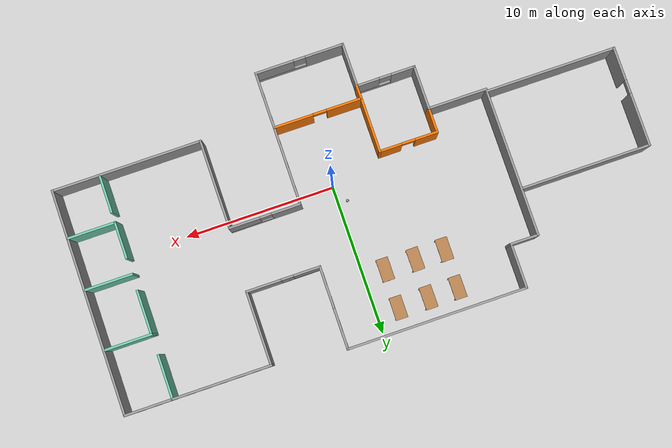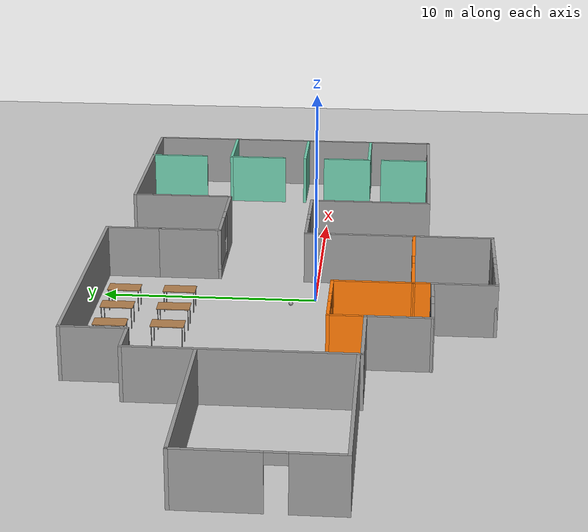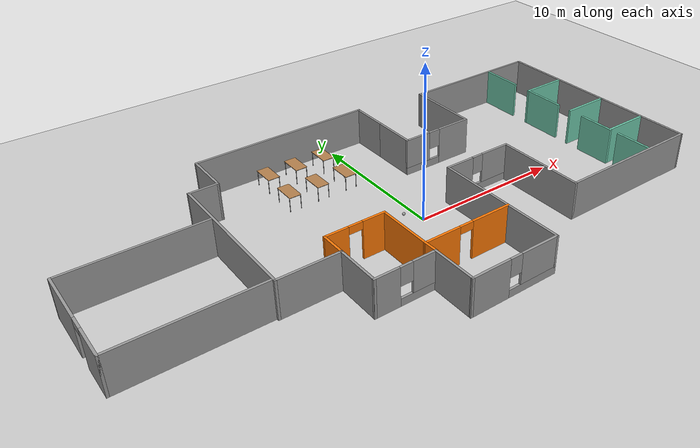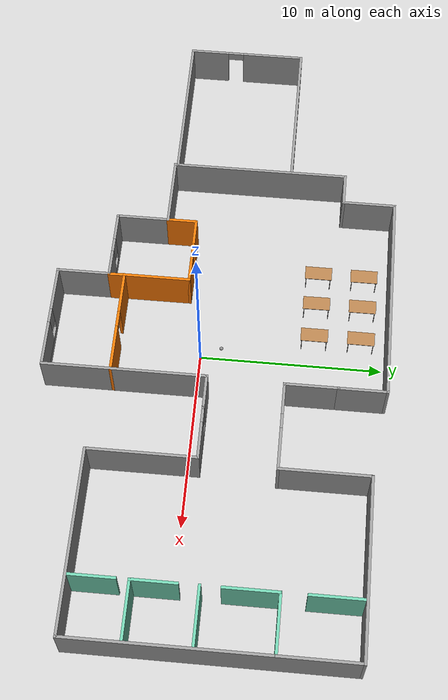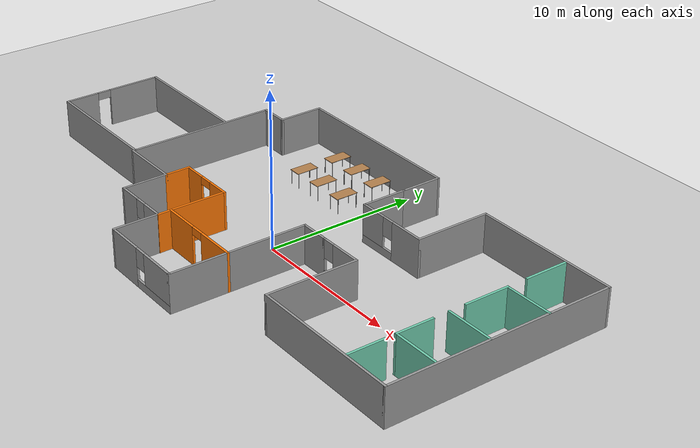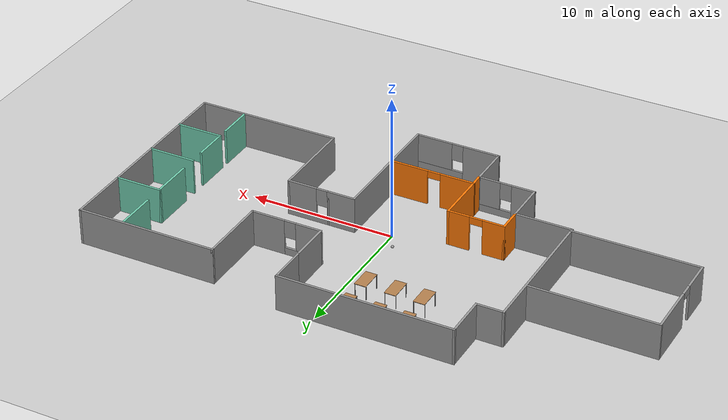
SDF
<sdf version="1.6">
 <world name="default">
  <model name="ground_plane">
   <static>1</static>
   <link name="link">
    <collision name="collision">
     <geometry><plane><normal>0 0 1</normal><size>100 100</size></plane></geometry>
     <surface>
      <contact><collide_bitmask>65535</collide_bitmask></contact>
      <friction><ode><mu>100</mu><mu2>50</mu2></ode></friction>
     </surface>
    </collision>
    <visual name="visual">
     <cast_shadows>0</cast_shadows>
     <geometry><plane><normal>0 0 1</normal><size>100 100</size></plane></geometry>
     <material>
      <script><uri>file://media/materials/scripts/gazebo.material</uri><name>Gazebo/Grey</name></script>
     </material>
    </visual>
   </link>
  </model>
  <model name="Project1_building">
   <pose>-1.45502 0.99671 0 0 -0 0</pose>
   <link name="Wall_35">
    <collision name="Wall_35_Collision">
     <geometry><box><size>10.0004 0.15 2.5</size></box></geometry>
     <pose>0 0 1.25 0 -0 0</pose>
    </collision>
    <visual name="Wall_35_Visual">
     <pose>0 0 1.25 0 -0 0</pose>
     <geometry><box><size>10.0004 0.15 2.5</size></box></geometry>
     <material>
      <script><uri>file://media/materials/scripts/gazebo.material</uri><name>Gazebo/Grey</name></script>
      <ambient>1 1 1 1</ambient>
     </material>
     <meta><layer>0</layer></meta>
    </visual>
    <pose>-9.74538 1.39985 0 0 0 -1.57079</pose>
   </link>
   <link name="Wall_36">
    <collision name="Wall_36_Collision">
     <geometry><box><size>4 0.15 2.5</size></box></geometry>
     <pose>0 0 1.25 0 -0 0</pose>
    </collision>
    <visual name="Wall_36_Visual">
     <pose>0 0 1.25 0 -0 0</pose>
     <geometry><box><size>4 0.15 2.5</size></box></geometry>
     <material>
      <script><uri>file://media/materials/scripts/gazebo.material</uri><name>Gazebo/Grey</name></script>
      <ambient>1 1 1 1</ambient>
     </material>
     <meta><layer>0</layer></meta>
    </visual>
    <pose>-7.82036 -3.52533 0 0 -0 0</pose>
   </link>
   <link name="Wall_37">
    <collision name="Wall_37_Collision">
     <geometry><box><size>3 0.15 2.5</size></box></geometry>
     <pose>0 0 1.25 0 -0 0</pose>
    </collision>
    <visual name="Wall_37_Visual">
     <pose>0 0 1.25 0 -0 0</pose>
     <geometry><box><size>3 0.15 2.5</size></box></geometry>
     <material>
      <script><uri>file://media/materials/scripts/gazebo.material</uri><name>Gazebo/Grey</name></script>
      <ambient>1 1 1 1</ambient>
     </material>
     <meta><layer>0</layer></meta>
    </visual>
    <pose>-5.89538 -4.95015 0 0 0 -1.57081</pose>
   </link>
   <link name="Wall_38">
    <pose>-3.97038 -6.37481 0 0 -0 8.5e-05</pose>
    <visual name="Wall_38_Visual_0">
     <pose>-1.18388 0 1.25 0 -0 0</pose>
     <geometry><box><size>1.63229 0.15 2.5</size></box></geometry>
     <material>
      <script><uri>file://media/materials/scripts/gazebo.material</uri><name>Gazebo/Grey</name></script>
      <ambient>1 1 1 1</ambient>
     </material>
     <meta><layer>0</layer></meta>
    </visual>
    <collision name="Wall_38_Collision_0">
     <geometry><box><size>1.63229 0.15 2.5</size></box></geometry>
     <pose>-1.18388 0 1.25 0 -0 0</pose>
    </collision>
    <visual name="Wall_38_Visual_1">
     <pose>0.816147 0 0.25 0 -0 0</pose>
     <geometry><box><size>2.36775 0.15 0.5</size></box></geometry>
     <material>
      <script><uri>file://media/materials/scripts/gazebo.material</uri><name>Gazebo/Grey</name></script>
      <ambient>1 1 1 1</ambient>
     </material>
     <meta><layer>0</layer></meta>
    </visual>
    <collision name="Wall_38_Collision_1">
     <geometry><box><size>2.36775 0.15 0.5</size></box></geometry>
     <pose>0.816147 0 0.25 0 -0 0</pose>
    </collision>
    <visual name="Wall_38_Visual_2">
     <pose>1.21615 0 1.5 0 -0 0</pose>
     <geometry><box><size>1.56775 0.15 2</size></box></geometry>
     <material>
      <script><uri>file://media/materials/scripts/gazebo.material</uri><name>Gazebo/Grey</name></script>
      <ambient>1 1 1 1</ambient>
     </material>
     <meta><layer>0</layer></meta>
    </visual>
    <collision name="Wall_38_Collision_2">
     <geometry><box><size>1.56775 0.15 2</size></box></geometry>
     <pose>1.21615 0 1.5 0 -0 0</pose>
    </collision>
    <visual name="Wall_38_Visual_3">
     <pose>0.032272 0 1.9 0 -0 0</pose>
     <geometry><box><size>0.8 0.15 1.2</size></box></geometry>
     <material>
      <script><uri>file://media/materials/scripts/gazebo.material</uri><name>Gazebo/Grey</name></script>
      <ambient>1 1 1 1</ambient>
     </material>
     <meta><layer>0</layer></meta>
    </visual>
    <collision name="Wall_38_Collision_3">
     <geometry><box><size>0.8 0.15 1.2</size></box></geometry>
     <pose>0.032272 0 1.9 0 -0 0</pose>
    </collision>
   </link>
   <link name="Wall_39">
    <collision name="Wall_39_Collision">
     <geometry><box><size>3.00042 0.15 2.5</size></box></geometry>
     <pose>0 0 1.25 0 -0 0</pose>
    </collision>
    <visual name="Wall_39_Visual">
     <pose>0 0 1.25 0 -0 0</pose>
     <geometry><box><size>3.00042 0.15 2.5</size></box></geometry>
     <material>
      <script><uri>file://media/materials/scripts/gazebo.material</uri><name>Gazebo/Grey</name></script>
      <ambient>1 1 1 1</ambient>
     </material>
     <meta><layer>0</layer></meta>
    </visual>
    <pose>-2.04538 -7.79981 0 0 0 -1.57081</pose>
   </link>
   <link name="Wall_40">
    <pose>0.879597 -9.22498 0 0 -0 0</pose>
    <visual name="Wall_40_Visual_0">
     <pose>-1.7008 0 1.25 0 -0 0</pose>
     <geometry><box><size>2.59839 0.15 2.5</size></box></geometry>
     <material>
      <script><uri>file://media/materials/scripts/gazebo.material</uri><name>Gazebo/Grey</name></script>
      <ambient>1 1 1 1</ambient>
     </material>
     <meta><layer>0</layer></meta>
    </visual>
    <collision name="Wall_40_Collision_0">
     <geometry><box><size>2.59839 0.15 2.5</size></box></geometry>
     <pose>-1.7008 0 1.25 0 -0 0</pose>
    </collision>
    <visual name="Wall_40_Visual_1">
     <pose>1.2992 0 0.25 0 -0 0</pose>
     <geometry><box><size>3.40161 0.15 0.5</size></box></geometry>
     <material>
      <script><uri>file://media/materials/scripts/gazebo.material</uri><name>Gazebo/Grey</name></script>
      <ambient>1 1 1 1</ambient>
     </material>
     <meta><layer>0</layer></meta>
    </visual>
    <collision name="Wall_40_Collision_1">
     <geometry><box><size>3.40161 0.15 0.5</size></box></geometry>
     <pose>1.2992 0 0.25 0 -0 0</pose>
    </collision>
    <visual name="Wall_40_Visual_2">
     <pose>1.6992 0 1.5 0 -0 0</pose>
     <geometry><box><size>2.60161 0.15 2</size></box></geometry>
     <material>
      <script><uri>file://media/materials/scripts/gazebo.material</uri><name>Gazebo/Grey</name></script>
      <ambient>1 1 1 1</ambient>
     </material>
     <meta><layer>0</layer></meta>
    </visual>
    <collision name="Wall_40_Collision_2">
     <geometry><box><size>2.60161 0.15 2</size></box></geometry>
     <pose>1.6992 0 1.5 0 -0 0</pose>
    </collision>
    <visual name="Wall_40_Visual_3">
     <pose>-0.001609 0 1.9 0 -0 0</pose>
     <geometry><box><size>0.8 0.15 1.2</size></box></geometry>
     <material>
      <script><uri>file://media/materials/scripts/gazebo.material</uri><name>Gazebo/Grey</name></script>
      <ambient>1 1 1 1</ambient>
     </material>
     <meta><layer>0</layer></meta>
    </visual>
    <collision name="Wall_40_Collision_3">
     <geometry><box><size>0.8 0.15 1.2</size></box></geometry>
     <pose>-0.001609 0 1.9 0 -0 0</pose>
    </collision>
   </link>
   <link name="Wall_41">
    <collision name="Wall_41_Collision">
     <geometry><box><size>9 0.15 2.5</size></box></geometry>
     <pose>0 0 1.25 0 -0 0</pose>
    </collision>
    <visual name="Wall_41_Visual">
     <pose>0 0 1.25 0 -0 0</pose>
     <geometry><box><size>9 0.15 2.5</size></box></geometry>
     <material>
      <script><uri>file://media/materials/scripts/gazebo.material</uri><name>Gazebo/Grey</name></script>
      <ambient>1 1 1 1</ambient>
     </material>
     <meta><layer>0</layer></meta>
    </visual>
    <pose>3.8046 -4.79998 0 0 -0 1.5708</pose>
   </link>
   <link name="Wall_42">
    <collision name="Wall_42_Collision">
     <geometry><box><size>2 0.15 2.5</size></box></geometry>
     <pose>0 0 1.25 0 -0 0</pose>
    </collision>
    <visual name="Wall_42_Visual">
     <pose>0 0 1.25 0 -0 0</pose>
     <geometry><box><size>2 0.15 2.5</size></box></geometry>
     <material>
      <script><uri>file://media/materials/scripts/gazebo.material</uri><name>Gazebo/Grey</name></script>
      <ambient>1 1 1 1</ambient>
     </material>
     <meta><layer>0</layer></meta>
    </visual>
    <pose>4.7296 -0.374976 0 0 -0 0</pose>
   </link>
   <link name="Wall_43">
    <pose>7.0796 -0.374976 0 0 -0 0</pose>
    <visual name="Wall_43_Visual_0">
     <pose>-1.44424 0 1.25 0 -0 0</pose>
     <geometry><box><size>0.111524 0.15 2.5</size></box></geometry>
     <material>
      <script><uri>file://media/materials/scripts/gazebo.material</uri><name>Gazebo/Grey</name></script>
      <ambient>1 1 1 1</ambient>
     </material>
     <meta><layer>0</layer></meta>
    </visual>
    <collision name="Wall_43_Collision_0">
     <geometry><box><size>0.111524 0.15 2.5</size></box></geometry>
     <pose>-1.44424 0 1.25 0 -0 0</pose>
    </collision>
    <visual name="Wall_43_Visual_1">
     <pose>0.055762 0 0.25 0 -0 0</pose>
     <geometry><box><size>2.88848 0.15 0.5</size></box></geometry>
     <material>
      <script><uri>file://media/materials/scripts/gazebo.material</uri><name>Gazebo/Grey</name></script>
      <ambient>1 1 1 1</ambient>
     </material>
     <meta><layer>0</layer></meta>
    </visual>
    <collision name="Wall_43_Collision_1">
     <geometry><box><size>2.88848 0.15 0.5</size></box></geometry>
     <pose>0.055762 0 0.25 0 -0 0</pose>
    </collision>
    <visual name="Wall_43_Visual_2">
     <pose>0.455762 0 1.5 0 -0 0</pose>
     <geometry><box><size>2.08848 0.15 2</size></box></geometry>
     <material>
      <script><uri>file://media/materials/scripts/gazebo.material</uri><name>Gazebo/Grey</name></script>
      <ambient>1 1 1 1</ambient>
     </material>
     <meta><layer>0</layer></meta>
    </visual>
    <collision name="Wall_43_Collision_2">
     <geometry><box><size>2.08848 0.15 2</size></box></geometry>
     <pose>0.455762 0 1.5 0 -0 0</pose>
    </collision>
    <visual name="Wall_43_Visual_3">
     <pose>-0.988476 0 1.9 0 -0 0</pose>
     <geometry><box><size>0.8 0.15 1.2</size></box></geometry>
     <material>
      <script><uri>file://media/materials/scripts/gazebo.material</uri><name>Gazebo/Grey</name></script>
      <ambient>1 1 1 1</ambient>
     </material>
     <meta><layer>0</layer></meta>
    </visual>
    <collision name="Wall_43_Collision_3">
     <geometry><box><size>0.8 0.15 1.2</size></box></geometry>
     <pose>-0.988476 0 1.9 0 -0 0</pose>
    </collision>
   </link>
   <link name="Wall_44">
    <collision name="Wall_44_Collision">
     <geometry><box><size>6 0.15 2.5</size></box></geometry>
     <pose>0 0 1.25 0 -0 0</pose>
    </collision>
    <visual name="Wall_44_Visual">
     <pose>0 0 1.25 0 -0 0</pose>
     <geometry><box><size>6 0.15 2.5</size></box></geometry>
     <material>
      <script><uri>file://media/materials/scripts/gazebo.material</uri><name>Gazebo/Grey</name></script>
      <ambient>1 1 1 1</ambient>
     </material>
     <meta><layer>0</layer></meta>
    </visual>
    <pose>8.5046 -3.29998 0 0 0 -1.5708</pose>
   </link>
   <link name="Wall_45">
    <collision name="Wall_45_Collision">
     <geometry><box><size>10 0.15 2.5</size></box></geometry>
     <pose>0 0 1.25 0 -0 0</pose>
    </collision>
    <visual name="Wall_45_Visual">
     <pose>0 0 1.25 0 -0 0</pose>
     <geometry><box><size>10 0.15 2.5</size></box></geometry>
     <material>
      <script><uri>file://media/materials/scripts/gazebo.material</uri><name>Gazebo/Grey</name></script>
      <ambient>1 1 1 1</ambient>
     </material>
     <meta><layer>0</layer></meta>
    </visual>
    <pose>13.4296 -6.22498 0 0 -0 0</pose>
   </link>
   <link name="Wall_46">
    <collision name="Wall_46_Collision">
     <geometry><box><size>15 0.15 2.5</size></box></geometry>
     <pose>0 0 1.25 0 -0 0</pose>
    </collision>
    <visual name="Wall_46_Visual">
     <pose>0 0 1.25 0 -0 0</pose>
     <geometry><box><size>15 0.15 2.5</size></box></geometry>
     <material>
      <script><uri>file://media/materials/scripts/gazebo.material</uri><name>Gazebo/Grey</name></script>
      <ambient>1 1 1 1</ambient>
     </material>
     <meta><layer>0</layer></meta>
    </visual>
    <pose>18.3546 1.20002 0 0 -0 1.5708</pose>
   </link>
   <link name="Wall_47">
    <collision name="Wall_47_Collision">
     <geometry><box><size>9.75 0.15 2.5</size></box></geometry>
     <pose>0 0 1.25 0 -0 0</pose>
    </collision>
    <visual name="Wall_47_Visual">
     <pose>0 0 1.25 0 -0 0</pose>
     <geometry><box><size>9.75 0.15 2.5</size></box></geometry>
     <material>
      <script><uri>file://media/materials/scripts/gazebo.material</uri><name>Gazebo/Grey</name></script>
      <ambient>1 1 1 1</ambient>
     </material>
     <meta><layer>0</layer></meta>
    </visual>
    <pose>13.5546 8.62502 0 0 -0 3.14159</pose>
   </link>
   <link name="Wall_48">
    <collision name="Wall_48_Collision">
     <geometry><box><size>5 0.15 2.5</size></box></geometry>
     <pose>0 0 1.25 0 -0 0</pose>
    </collision>
    <visual name="Wall_48_Visual">
     <pose>0 0 1.25 0 -0 0</pose>
     <geometry><box><size>5 0.15 2.5</size></box></geometry>
     <material>
      <script><uri>file://media/materials/scripts/gazebo.material</uri><name>Gazebo/Grey</name></script>
      <ambient>1 1 1 1</ambient>
     </material>
     <meta><layer>0</layer></meta>
    </visual>
    <pose>8.7546 6.20003 0 0 0 -1.5708</pose>
   </link>
   <link name="Wall_49">
    <pose>6.3296 3.77502 0 0 -0 3.14159</pose>
    <visual name="Wall_49_Visual_0">
     <pose>-1.31529 0 1.25 0 -0 0</pose>
     <geometry><box><size>2.36941 0.15 2.5</size></box></geometry>
     <material>
      <script><uri>file://media/materials/scripts/gazebo.material</uri><name>Gazebo/Grey</name></script>
      <ambient>1 1 1 1</ambient>
     </material>
     <meta><layer>0</layer></meta>
    </visual>
    <collision name="Wall_49_Collision_0">
     <geometry><box><size>2.36941 0.15 2.5</size></box></geometry>
     <pose>-1.31529 0 1.25 0 -0 0</pose>
    </collision>
    <visual name="Wall_49_Visual_1">
     <pose>1.18471 0 0.25 0 -0 0</pose>
     <geometry><box><size>2.63059 0.15 0.5</size></box></geometry>
     <material>
      <script><uri>file://media/materials/scripts/gazebo.material</uri><name>Gazebo/Grey</name></script>
      <ambient>1 1 1 1</ambient>
     </material>
     <meta><layer>0</layer></meta>
    </visual>
    <collision name="Wall_49_Collision_1">
     <geometry><box><size>2.63059 0.15 0.5</size></box></geometry>
     <pose>1.18471 0 0.25 0 -0 0</pose>
    </collision>
    <visual name="Wall_49_Visual_2">
     <pose>1.58471 0 1.5 0 -0 0</pose>
     <geometry><box><size>1.83059 0.15 2</size></box></geometry>
     <material>
      <script><uri>file://media/materials/scripts/gazebo.material</uri><name>Gazebo/Grey</name></script>
      <ambient>1 1 1 1</ambient>
     </material>
     <meta><layer>0</layer></meta>
    </visual>
    <collision name="Wall_49_Collision_2">
     <geometry><box><size>1.83059 0.15 2</size></box></geometry>
     <pose>1.58471 0 1.5 0 -0 0</pose>
    </collision>
    <visual name="Wall_49_Visual_3">
     <pose>0.269414 0 1.9 0 -0 0</pose>
     <geometry><box><size>0.8 0.15 1.2</size></box></geometry>
     <material>
      <script><uri>file://media/materials/scripts/gazebo.material</uri><name>Gazebo/Grey</name></script>
      <ambient>1 1 1 1</ambient>
     </material>
     <meta><layer>0</layer></meta>
    </visual>
    <collision name="Wall_49_Collision_3">
     <geometry><box><size>0.8 0.15 1.2</size></box></geometry>
     <pose>0.269414 0 1.9 0 -0 0</pose>
    </collision>
   </link>
   <link name="Wall_50">
    <collision name="Wall_50_Collision">
     <geometry><box><size>3 0.15 2.5</size></box></geometry>
     <pose>0 0 1.25 0 -0 0</pose>
    </collision>
    <visual name="Wall_50_Visual">
     <pose>0 0 1.25 0 -0 0</pose>
     <geometry><box><size>3 0.15 2.5</size></box></geometry>
     <material>
      <script><uri>file://media/materials/scripts/gazebo.material</uri><name>Gazebo/Grey</name></script>
      <ambient>1 1 1 1</ambient>
     </material>
     <meta><layer>0</layer></meta>
    </visual>
    <pose>3.9046 5.20003 0 0 -0 1.5708</pose>
   </link>
   <link name="Wall_51">
    <collision name="Wall_51_Collision">
     <geometry><box><size>2.75 0.15 2.5</size></box></geometry>
     <pose>0 0 1.25 0 -0 0</pose>
    </collision>
    <visual name="Wall_51_Visual">
     <pose>0 0 1.25 0 -0 0</pose>
     <geometry><box><size>2.75 0.15 2.5</size></box></geometry>
     <material>
      <script><uri>file://media/materials/scripts/gazebo.material</uri><name>Gazebo/Grey</name></script>
      <ambient>1 1 1 1</ambient>
     </material>
     <meta><layer>0</layer></meta>
    </visual>
    <pose>3.9046 7.92502 0 0 -0 1.5708</pose>
   </link>
   <link name="Wall_52">
    <collision name="Wall_52_Collision">
     <geometry><box><size>12 0.15 2.5</size></box></geometry>
     <pose>0 0 1.25 0 -0 0</pose>
    </collision>
    <visual name="Wall_52_Visual">
     <pose>0 0 1.25 0 -0 0</pose>
     <geometry><box><size>12 0.15 2.5</size></box></geometry>
     <material>
      <script><uri>file://media/materials/scripts/gazebo.material</uri><name>Gazebo/Grey</name></script>
      <ambient>1 1 1 1</ambient>
     </material>
     <meta><layer>0</layer></meta>
    </visual>
    <pose>-2.02038 9.22485 0 0 0 -3.14156</pose>
   </link>
   <link name="Wall_53">
    <collision name="Wall_53_Collision">
     <geometry><box><size>3.05 0.15 2.5</size></box></geometry>
     <pose>0 0 1.25 0 -0 0</pose>
    </collision>
    <visual name="Wall_53_Visual">
     <pose>0 0 1.25 0 -0 0</pose>
     <geometry><box><size>3.05 0.15 2.5</size></box></geometry>
     <material>
      <script><uri>file://media/materials/scripts/gazebo.material</uri><name>Gazebo/Grey</name></script>
      <ambient>1 1 1 1</ambient>
     </material>
     <meta><layer>0</layer></meta>
    </visual>
    <pose>-7.94536 7.77467 0 0 0 -1.5708</pose>
   </link>
   <link name="Wall_54">
    <collision name="Wall_54_Collision">
     <geometry><box><size>1.95069 0.15 2.5</size></box></geometry>
     <pose>0 0 1.25 0 -0 0</pose>
    </collision>
    <visual name="Wall_54_Visual">
     <pose>0 0 1.25 0 -0 0</pose>
     <geometry><box><size>1.95069 0.15 2.5</size></box></geometry>
     <material>
      <script><uri>file://media/materials/scripts/gazebo.material</uri><name>Gazebo/Grey</name></script>
      <ambient>1 1 1 1</ambient>
     </material>
     <meta><layer>0</layer></meta>
    </visual>
    <pose>-8.84538 6.32485 0 0 -0 3.1414</pose>
   </link>
   <link name="Wall_56">
    <collision name="Wall_56_Collision">
     <geometry><box><size>1 0.15 2.5</size></box></geometry>
     <pose>0 0 1.25 0 -0 0</pose>
    </collision>
    <visual name="Wall_56_Visual">
     <pose>0 0 1.25 0 -0 0</pose>
     <geometry><box><size>1 0.15 2.5</size></box></geometry>
     <material>
      <script><uri>file://media/materials/scripts/gazebo.material</uri><name>Gazebo/Grey</name></script>
      <ambient>0.996078 0.47451 0.0196078 1</ambient>
     </material>
     <meta><layer>0</layer></meta>
    </visual>
    <pose>-2.03353 -5.94949 0 0 -0 1.59861</pose>
   </link>
   <link name="Wall_57">
    <pose>0.879641 -5.52483 0 0 0 -0.000171</pose>
    <visual name="Wall_57_Visual_0">
     <pose>-1.78854 0 1.25 0 -0 0</pose>
     <geometry><box><size>2.42292 0.15 2.5</size></box></geometry>
     <material>
      <script><uri>file://media/materials/scripts/gazebo.material</uri><name>Gazebo/Grey</name></script>
      <ambient>0.996078 0.47451 0.0196078 1</ambient>
     </material>
     <meta><layer>0</layer></meta>
    </visual>
    <collision name="Wall_57_Collision_0">
     <geometry><box><size>2.42292 0.15 2.5</size></box></geometry>
     <pose>-1.78854 0 1.25 0 -0 0</pose>
    </collision>
    <visual name="Wall_57_Visual_1">
     <pose>1.66146 0 1.25 0 -0 0</pose>
     <geometry><box><size>2.67708 0.15 2.5</size></box></geometry>
     <material>
      <script><uri>file://media/materials/scripts/gazebo.material</uri><name>Gazebo/Grey</name></script>
      <ambient>0.996078 0.47451 0.0196078 1</ambient>
     </material>
     <meta><layer>0</layer></meta>
    </visual>
    <collision name="Wall_57_Collision_1">
     <geometry><box><size>2.67708 0.15 2.5</size></box></geometry>
     <pose>1.66146 0 1.25 0 -0 0</pose>
    </collision>
    <visual name="Wall_57_Visual_2">
     <pose>-0.127078 0 2.25 0 -0 0</pose>
     <geometry><box><size>0.9 0.15 0.5</size></box></geometry>
     <material>
      <script><uri>file://media/materials/scripts/gazebo.material</uri><name>Gazebo/Grey</name></script>
      <ambient>0.996078 0.47451 0.0196078 1</ambient>
     </material>
     <meta><layer>0</layer></meta>
    </visual>
    <collision name="Wall_57_Collision_2">
     <geometry><box><size>0.9 0.15 0.5</size></box></geometry>
     <pose>-0.127078 0 2.25 0 -0 0</pose>
    </collision>
   </link>
   <link name="Wall_59">
    <collision name="Wall_59_Collision">
     <geometry><box><size>1.75 0.15 2.5</size></box></geometry>
     <pose>0 0 1.25 0 -0 0</pose>
    </collision>
    <visual name="Wall_59_Visual">
     <pose>0 0 1.25 0 -0 0</pose>
     <geometry><box><size>1.75 0.15 2.5</size></box></geometry>
     <material>
      <script><uri>file://media/materials/scripts/gazebo.material</uri><name>Gazebo/Grey</name></script>
      <ambient>0.996078 0.47451 0.0196078 1</ambient>
     </material>
     <meta><layer>0</layer></meta>
    </visual>
    <pose>-5.89536 -2.72533 0 0 -0 1.5708</pose>
   </link>
   <link name="Wall_62">
    <collision name="Wall_62_Collision">
     <geometry><box><size>3.74975 0.15 2.5</size></box></geometry>
     <pose>0 0 1.25 0 -0 0</pose>
    </collision>
    <visual name="Wall_62_Visual">
     <pose>0 0 1.25 0 -0 0</pose>
     <geometry><box><size>3.74975 0.15 2.5</size></box></geometry>
     <material>
      <script><uri>file://media/materials/scripts/gazebo.material</uri><name>Gazebo/Grey</name></script>
      <ambient>0.996078 0.47451 0.0196078 1</ambient>
     </material>
     <meta><layer>0</layer></meta>
    </visual>
    <pose>-2.04536 -3.72483 0 0 -0 1.5708</pose>
   </link>
   <link name="Wall_63">
    <pose>-3.97036 -1.92533 0 0 -0 3.14159</pose>
    <visual name="Wall_63_Visual_0">
     <pose>-1.22397 0 1.25 0 -0 0</pose>
     <geometry><box><size>1.55205 0.15 2.5</size></box></geometry>
     <material>
      <script><uri>file://media/materials/scripts/gazebo.material</uri><name>Gazebo/Grey</name></script>
      <ambient>0.996078 0.47451 0.0196078 1</ambient>
     </material>
     <meta><layer>0</layer></meta>
    </visual>
    <collision name="Wall_63_Collision_0">
     <geometry><box><size>1.55205 0.15 2.5</size></box></geometry>
     <pose>-1.22397 0 1.25 0 -0 0</pose>
    </collision>
    <visual name="Wall_63_Visual_1">
     <pose>1.22603 0 1.25 0 -0 0</pose>
     <geometry><box><size>1.54795 0.15 2.5</size></box></geometry>
     <material>
      <script><uri>file://media/materials/scripts/gazebo.material</uri><name>Gazebo/Grey</name></script>
      <ambient>0.996078 0.47451 0.0196078 1</ambient>
     </material>
     <meta><layer>0</layer></meta>
    </visual>
    <collision name="Wall_63_Collision_1">
     <geometry><box><size>1.54795 0.15 2.5</size></box></geometry>
     <pose>1.22603 0 1.25 0 -0 0</pose>
    </collision>
    <visual name="Wall_63_Visual_2">
     <pose>0.002054 0 2.25 0 -0 0</pose>
     <geometry><box><size>0.9 0.15 0.5</size></box></geometry>
     <material>
      <script><uri>file://media/materials/scripts/gazebo.material</uri><name>Gazebo/Grey</name></script>
      <ambient>0.996078 0.47451 0.0196078 1</ambient>
     </material>
     <meta><layer>0</layer></meta>
    </visual>
    <collision name="Wall_63_Collision_2">
     <geometry><box><size>0.9 0.15 0.5</size></box></geometry>
     <pose>0.002054 0 2.25 0 -0 0</pose>
    </collision>
   </link>
   <link name="Wall_65">
    <collision name="Wall_65_Collision">
     <geometry><box><size>8.61907 0.15 2.5</size></box></geometry>
     <pose>0 0 1.25 0 -0 0</pose>
    </collision>
    <visual name="Wall_65_Visual">
     <pose>0 0 1.25 0 -0 0</pose>
     <geometry><box><size>8.61907 0.15 2.5</size></box></geometry>
     <material>
      <script><uri>file://media/materials/scripts/gazebo.material</uri><name>Gazebo/Grey</name></script>
      <ambient>1 1 1 1</ambient>
     </material>
     <meta><layer>0</layer></meta>
    </visual>
    <pose>-14.1201 3.22011 0 0 -0 3.14159</pose>
   </link>
   <link name="Wall_73">
    <pose>-18.3546 -0.079888 0 0 0 -1.5708</pose>
    <visual name="Wall_73_Visual_0">
     <pose>-1.57968 0 1.25 0 -0 0</pose>
     <geometry><box><size>3.59064 0.15 2.5</size></box></geometry>
     <material>
      <script><uri>file://media/materials/scripts/gazebo.material</uri><name>Gazebo/Grey</name></script>
      <ambient>1 1 1 1</ambient>
     </material>
     <meta><layer>0</layer></meta>
    </visual>
    <collision name="Wall_73_Collision_0">
     <geometry><box><size>3.59064 0.15 2.5</size></box></geometry>
     <pose>-1.57968 0 1.25 0 -0 0</pose>
    </collision>
    <visual name="Wall_73_Visual_1">
     <pose>2.24532 0 1.25 0 -0 0</pose>
     <geometry><box><size>2.25936 0.15 2.5</size></box></geometry>
     <material>
      <script><uri>file://media/materials/scripts/gazebo.material</uri><name>Gazebo/Grey</name></script>
      <ambient>1 1 1 1</ambient>
     </material>
     <meta><layer>0</layer></meta>
    </visual>
    <collision name="Wall_73_Collision_1">
     <geometry><box><size>2.25936 0.15 2.5</size></box></geometry>
     <pose>2.24532 0 1.25 0 -0 0</pose>
    </collision>
    <visual name="Wall_73_Visual_2">
     <pose>0.665644 0 2.25 0 -0 0</pose>
     <geometry><box><size>0.9 0.15 0.5</size></box></geometry>
     <material>
      <script><uri>file://media/materials/scripts/gazebo.material</uri><name>Gazebo/Grey</name></script>
      <ambient>1 1 1 1</ambient>
     </material>
     <meta><layer>0</layer></meta>
    </visual>
    <collision name="Wall_73_Collision_2">
     <geometry><box><size>0.9 0.15 0.5</size></box></geometry>
     <pose>0.665644 0 2.25 0 -0 0</pose>
    </collision>
   </link>
   <link name="Wall_74">
    <collision name="Wall_74_Collision">
     <geometry><box><size>8.75 0.15 2.5</size></box></geometry>
     <pose>0 0 1.25 0 -0 0</pose>
    </collision>
    <visual name="Wall_74_Visual">
     <pose>0 0 1.25 0 -0 0</pose>
     <geometry><box><size>8.75 0.15 2.5</size></box></geometry>
     <material>
      <script><uri>file://media/materials/scripts/gazebo.material</uri><name>Gazebo/Grey</name></script>
      <ambient>1 1 1 1</ambient>
     </material>
     <meta><layer>0</layer></meta>
    </visual>
    <pose>-14.0546 -3.37989 0 0 -0 0</pose>
   </link>
   <link name="Wall_76">
    <collision name="Wall_76_Collision">
     <geometry><box><size>3 0.15 2.5</size></box></geometry>
     <pose>0 0 1.25 0 -0 0</pose>
    </collision>
    <visual name="Wall_76_Visual">
     <pose>0 0 1.25 0 -0 0</pose>
     <geometry><box><size>3 0.15 2.5</size></box></geometry>
     <material>
      <script><uri>file://media/materials/scripts/gazebo.material</uri><name>Gazebo/Grey</name></script>
      <ambient>0.435294 0.796078 0.67451 1</ambient>
     </material>
     <meta><layer>0</layer></meta>
    </visual>
    <pose>15.2266 7.19767 0 0 0 -1.5708</pose>
   </link>
   <link name="Wall_81">
    <collision name="Wall_81_Collision">
     <geometry><box><size>3 0.15 2.5</size></box></geometry>
     <pose>0 0 1.25 0 -0 0</pose>
    </collision>
    <visual name="Wall_81_Visual">
     <pose>0 0 1.25 0 -0 0</pose>
     <geometry><box><size>3 0.15 2.5</size></box></geometry>
     <material>
      <script><uri>file://media/materials/scripts/gazebo.material</uri><name>Gazebo/Grey</name></script>
      <ambient>0.435294 0.796078 0.67451 1</ambient>
     </material>
     <meta><layer>0</layer></meta>
    </visual>
    <pose>15.2266 2.95067 0 0 0 -1.5708</pose>
   </link>
   <link name="Wall_87">
    <collision name="Wall_87_Collision">
     <geometry><box><size>3.25 0.15 2.5</size></box></geometry>
     <pose>0 0 1.25 0 -0 0</pose>
    </collision>
    <visual name="Wall_87_Visual">
     <pose>0 0 1.25 0 -0 0</pose>
     <geometry><box><size>3.25 0.15 2.5</size></box></geometry>
     <material>
      <script><uri>file://media/materials/scripts/gazebo.material</uri><name>Gazebo/Grey</name></script>
      <ambient>0.435294 0.796078 0.67451 1</ambient>
     </material>
     <meta><layer>0</layer></meta>
    </visual>
    <pose>16.7766 4.37567 0 0 -0 0</pose>
   </link>
   <link name="Wall_89">
    <collision name="Wall_89_Collision">
     <geometry><box><size>3.26808 0.15 2.5</size></box></geometry>
     <pose>0 0 1.25 0 -0 0</pose>
    </collision>
    <visual name="Wall_89_Visual">
     <pose>0 0 1.25 0 -0 0</pose>
     <geometry><box><size>3.26808 0.15 2.5</size></box></geometry>
     <material>
      <script><uri>file://media/materials/scripts/gazebo.material</uri><name>Gazebo/Grey</name></script>
      <ambient>0.435294 0.796078 0.67451 1</ambient>
     </material>
     <meta><layer>0</layer></meta>
    </visual>
    <pose>16.7856 0.405672 0 0 -0 0</pose>
   </link>
   <link name="Wall_94">
    <collision name="Wall_94_Collision">
     <geometry><box><size>3.25 0.15 2.5</size></box></geometry>
     <pose>0 0 1.25 0 -0 0</pose>
    </collision>
    <visual name="Wall_94_Visual">
     <pose>0 0 1.25 0 -0 0</pose>
     <geometry><box><size>3.25 0.15 2.5</size></box></geometry>
     <material>
      <script><uri>file://media/materials/scripts/gazebo.material</uri><name>Gazebo/Grey</name></script>
      <ambient>0.435294 0.796078 0.67451 1</ambient>
     </material>
     <meta><layer>0</layer></meta>
    </visual>
    <pose>16.7766 -3.04433 0 0 -0 0</pose>
   </link>
   <link name="Wall_96">
    <collision name="Wall_96_Collision">
     <geometry><box><size>2.5 0.15 2.5</size></box></geometry>
     <pose>0 0 1.25 0 -0 0</pose>
    </collision>
    <visual name="Wall_96_Visual">
     <pose>0 0 1.25 0 -0 0</pose>
     <geometry><box><size>2.5 0.15 2.5</size></box></geometry>
     <material>
      <script><uri>file://media/materials/scripts/gazebo.material</uri><name>Gazebo/Grey</name></script>
      <ambient>0.435294 0.796078 0.67451 1</ambient>
     </material>
     <meta><layer>0</layer></meta>
    </visual>
    <pose>15.2266 -1.87233 0 0 0 -1.5708</pose>
   </link>
   <link name="Wall_98">
    <collision name="Wall_98_Collision">
     <geometry><box><size>2.5 0.15 2.5</size></box></geometry>
     <pose>0 0 1.25 0 -0 0</pose>
    </collision>
    <visual name="Wall_98_Visual">
     <pose>0 0 1.25 0 -0 0</pose>
     <geometry><box><size>2.5 0.15 2.5</size></box></geometry>
     <material>
      <script><uri>file://media/materials/scripts/gazebo.material</uri><name>Gazebo/Grey</name></script>
      <ambient>0.435294 0.796078 0.67451 1</ambient>
     </material>
     <meta><layer>0</layer></meta>
    </visual>
    <pose>15.2266 -4.93933 0 0 0 -1.5708</pose>
   </link>
   <static>1</static>
  </model>
  <model name="table_0">
   <static>1</static>
   <link name="link">
    <collision name="surface">
     <pose>0 0 1 0 -0 0</pose>
     <geometry><box><size>1.5 0.8 0.03</size></box></geometry>
     <surface><friction><ode><mu>0.6</mu><mu2>0.6</mu2></ode></friction></surface>
    </collision>
    <visual name="visual1">
     <pose>0 0 1 0 -0 0</pose>
     <geometry><box><size>1.5 0.8 0.03</size></box></geometry>
     <material>
      <script><uri>file://media/materials/scripts/gazebo.material</uri><name>Gazebo/Wood</name></script>
     </material>
    </visual>
    <collision name="front_left_leg">
     <pose>0.68 0.38 0.5 0 -0 0</pose>
     <geometry><cylinder><radius>0.02</radius><length>1</length></cylinder></geometry>
    </collision>
    <visual name="front_left_leg">
     <pose>0.68 0.38 0.5 0 -0 0</pose>
     <geometry><cylinder><radius>0.02</radius><length>1</length></cylinder></geometry>
     <material>
      <script><uri>file://media/materials/scripts/gazebo.material</uri><name>Gazebo/Grey</name></script>
     </material>
    </visual>
    <collision name="front_right_leg">
     <pose>0.68 -0.38 0.5 0 -0 0</pose>
     <geometry><cylinder><radius>0.02</radius><length>1</length></cylinder></geometry>
    </collision>
    <visual name="front_right_leg">
     <pose>0.68 -0.38 0.5 0 -0 0</pose>
     <geometry><cylinder><radius>0.02</radius><length>1</length></cylinder></geometry>
     <material>
      <script><uri>file://media/materials/scripts/gazebo.material</uri><name>Gazebo/Grey</name></script>
     </material>
    </visual>
    <collision name="back_right_leg">
     <pose>-0.68 -0.38 0.5 0 -0 0</pose>
     <geometry><cylinder><radius>0.02</radius><length>1</length></cylinder></geometry>
    </collision>
    <visual name="back_right_leg">
     <pose>-0.68 -0.38 0.5 0 -0 0</pose>
     <geometry><cylinder><radius>0.02</radius><length>1</length></cylinder></geometry>
     <material>
      <script><uri>file://media/materials/scripts/gazebo.material</uri><name>Gazebo/Grey</name></script>
     </material>
    </visual>
    <collision name="back_left_leg">
     <pose>-0.68 0.38 0.5 0 -0 0</pose>
     <geometry><cylinder><radius>0.02</radius><length>1</length></cylinder></geometry>
    </collision>
    <visual name="back_left_leg">
     <pose>-0.68 0.38 0.5 0 -0 0</pose>
     <geometry><cylinder><radius>0.02</radius><length>1</length></cylinder></geometry>
     <material>
      <script><uri>file://media/materials/scripts/gazebo.material</uri><name>Gazebo/Grey</name></script>
     </material>
    </visual>
   </link>
   <pose>-1.45 6.2 0 0 0 -1.57144</pose>
  </model>
  <model name="table_1">
   <static>1</static>
   <link name="link">
    <collision name="surface">
     <pose>0 0 1 0 -0 0</pose>
     <geometry><box><size>1.5 0.8 0.03</size></box></geometry>
     <surface><friction><ode><mu>0.6</mu><mu2>0.6</mu2></ode></friction></surface>
    </collision>
    <visual name="visual1">
     <pose>0 0 1 0 -0 0</pose>
     <geometry><box><size>1.5 0.8 0.03</size></box></geometry>
     <material>
      <script><uri>file://media/materials/scripts/gazebo.material</uri><name>Gazebo/Wood</name></script>
     </material>
    </visual>
    <collision name="front_left_leg">
     <pose>0.68 0.38 0.5 0 -0 0</pose>
     <geometry><cylinder><radius>0.02</radius><length>1</length></cylinder></geometry>
    </collision>
    <visual name="front_left_leg">
     <pose>0.68 0.38 0.5 0 -0 0</pose>
     <geometry><cylinder><radius>0.02</radius><length>1</length></cylinder></geometry>
     <material>
      <script><uri>file://media/materials/scripts/gazebo.material</uri><name>Gazebo/Grey</name></script>
     </material>
    </visual>
    <collision name="front_right_leg">
     <pose>0.68 -0.38 0.5 0 -0 0</pose>
     <geometry><cylinder><radius>0.02</radius><length>1</length></cylinder></geometry>
    </collision>
    <visual name="front_right_leg">
     <pose>0.68 -0.38 0.5 0 -0 0</pose>
     <geometry><cylinder><radius>0.02</radius><length>1</length></cylinder></geometry>
     <material>
      <script><uri>file://media/materials/scripts/gazebo.material</uri><name>Gazebo/Grey</name></script>
     </material>
    </visual>
    <collision name="back_right_leg">
     <pose>-0.68 -0.38 0.5 0 -0 0</pose>
     <geometry><cylinder><radius>0.02</radius><length>1</length></cylinder></geometry>
    </collision>
    <visual name="back_right_leg">
     <pose>-0.68 -0.38 0.5 0 -0 0</pose>
     <geometry><cylinder><radius>0.02</radius><length>1</length></cylinder></geometry>
     <material>
      <script><uri>file://media/materials/scripts/gazebo.material</uri><name>Gazebo/Grey</name></script>
     </material>
    </visual>
    <collision name="back_left_leg">
     <pose>-0.68 0.38 0.5 0 -0 0</pose>
     <geometry><cylinder><radius>0.02</radius><length>1</length></cylinder></geometry>
    </collision>
    <visual name="back_left_leg">
     <pose>-0.68 0.38 0.5 0 -0 0</pose>
     <geometry><cylinder><radius>0.02</radius><length>1</length></cylinder></geometry>
     <material>
      <script><uri>file://media/materials/scripts/gazebo.material</uri><name>Gazebo/Grey</name></script>
     </material>
    </visual>
   </link>
   <pose>-3.48 6.2 0 0.002905 -2.8e-05 -1.56136</pose>
  </model>
  <model name="table_2">
   <static>1</static>
   <link name="link">
    <collision name="surface">
     <pose>0 0 1 0 -0 0</pose>
     <geometry><box><size>1.5 0.8 0.03</size></box></geometry>
     <surface><friction><ode><mu>0.6</mu><mu2>0.6</mu2></ode></friction></surface>
    </collision>
    <visual name="visual1">
     <pose>0 0 1 0 -0 0</pose>
     <geometry><box><size>1.5 0.8 0.03</size></box></geometry>
     <material>
      <script><uri>file://media/materials/scripts/gazebo.material</uri><name>Gazebo/Wood</name></script>
     </material>
    </visual>
    <collision name="front_left_leg">
     <pose>0.68 0.38 0.5 0 -0 0</pose>
     <geometry><cylinder><radius>0.02</radius><length>1</length></cylinder></geometry>
    </collision>
    <visual name="front_left_leg">
     <pose>0.68 0.38 0.5 0 -0 0</pose>
     <geometry><cylinder><radius>0.02</radius><length>1</length></cylinder></geometry>
     <material>
      <script><uri>file://media/materials/scripts/gazebo.material</uri><name>Gazebo/Grey</name></script>
     </material>
    </visual>
    <collision name="front_right_leg">
     <pose>0.68 -0.38 0.5 0 -0 0</pose>
     <geometry><cylinder><radius>0.02</radius><length>1</length></cylinder></geometry>
    </collision>
    <visual name="front_right_leg">
     <pose>0.68 -0.38 0.5 0 -0 0</pose>
     <geometry><cylinder><radius>0.02</radius><length>1</length></cylinder></geometry>
     <material>
      <script><uri>file://media/materials/scripts/gazebo.material</uri><name>Gazebo/Grey</name></script>
     </material>
    </visual>
    <collision name="back_right_leg">
     <pose>-0.68 -0.38 0.5 0 -0 0</pose>
     <geometry><cylinder><radius>0.02</radius><length>1</length></cylinder></geometry>
    </collision>
    <visual name="back_right_leg">
     <pose>-0.68 -0.38 0.5 0 -0 0</pose>
     <geometry><cylinder><radius>0.02</radius><length>1</length></cylinder></geometry>
     <material>
      <script><uri>file://media/materials/scripts/gazebo.material</uri><name>Gazebo/Grey</name></script>
     </material>
    </visual>
    <collision name="back_left_leg">
     <pose>-0.68 0.38 0.5 0 -0 0</pose>
     <geometry><cylinder><radius>0.02</radius><length>1</length></cylinder></geometry>
    </collision>
    <visual name="back_left_leg">
     <pose>-0.68 0.38 0.5 0 -0 0</pose>
     <geometry><cylinder><radius>0.02</radius><length>1</length></cylinder></geometry>
     <material>
      <script><uri>file://media/materials/scripts/gazebo.material</uri><name>Gazebo/Grey</name></script>
     </material>
    </visual>
   </link>
   <pose>-3.48 8.77 0 0 0 -1.56605</pose>
  </model>
  <model name="table_3">
   <static>1</static>
   <link name="link">
    <collision name="surface">
     <pose>0 0 1 0 -0 0</pose>
     <geometry><box><size>1.5 0.8 0.03</size></box></geometry>
     <surface><friction><ode><mu>0.6</mu><mu2>0.6</mu2></ode></friction></surface>
    </collision>
    <visual name="visual1">
     <pose>0 0 1 0 -0 0</pose>
     <geometry><box><size>1.5 0.8 0.03</size></box></geometry>
     <material>
      <script><uri>file://media/materials/scripts/gazebo.material</uri><name>Gazebo/Wood</name></script>
     </material>
    </visual>
    <collision name="front_left_leg">
     <pose>0.68 0.38 0.5 0 -0 0</pose>
     <geometry><cylinder><radius>0.02</radius><length>1</length></cylinder></geometry>
    </collision>
    <visual name="front_left_leg">
     <pose>0.68 0.38 0.5 0 -0 0</pose>
     <geometry><cylinder><radius>0.02</radius><length>1</length></cylinder></geometry>
     <material>
      <script><uri>file://media/materials/scripts/gazebo.material</uri><name>Gazebo/Grey</name></script>
     </material>
    </visual>
    <collision name="front_right_leg">
     <pose>0.68 -0.38 0.5 0 -0 0</pose>
     <geometry><cylinder><radius>0.02</radius><length>1</length></cylinder></geometry>
    </collision>
    <visual name="front_right_leg">
     <pose>0.68 -0.38 0.5 0 -0 0</pose>
     <geometry><cylinder><radius>0.02</radius><length>1</length></cylinder></geometry>
     <material>
      <script><uri>file://media/materials/scripts/gazebo.material</uri><name>Gazebo/Grey</name></script>
     </material>
    </visual>
    <collision name="back_right_leg">
     <pose>-0.68 -0.38 0.5 0 -0 0</pose>
     <geometry><cylinder><radius>0.02</radius><length>1</length></cylinder></geometry>
    </collision>
    <visual name="back_right_leg">
     <pose>-0.68 -0.38 0.5 0 -0 0</pose>
     <geometry><cylinder><radius>0.02</radius><length>1</length></cylinder></geometry>
     <material>
      <script><uri>file://media/materials/scripts/gazebo.material</uri><name>Gazebo/Grey</name></script>
     </material>
    </visual>
    <collision name="back_left_leg">
     <pose>-0.68 0.38 0.5 0 -0 0</pose>
     <geometry><cylinder><radius>0.02</radius><length>1</length></cylinder></geometry>
    </collision>
    <visual name="back_left_leg">
     <pose>-0.68 0.38 0.5 0 -0 0</pose>
     <geometry><cylinder><radius>0.02</radius><length>1</length></cylinder></geometry>
     <material>
      <script><uri>file://media/materials/scripts/gazebo.material</uri><name>Gazebo/Grey</name></script>
     </material>
    </visual>
   </link>
   <pose>-5.45 8.77 0 0 0 -1.56771</pose>
  </model>
  <model name="table_4">
   <static>1</static>
   <link name="link">
    <collision name="surface">
     <pose>0 0 1 0 -0 0</pose>
     <geometry><box><size>1.5 0.8 0.03</size></box></geometry>
     <surface><friction><ode><mu>0.6</mu><mu2>0.6</mu2></ode></friction></surface>
    </collision>
    <visual name="visual1">
     <pose>0 0 1 0 -0 0</pose>
     <geometry><box><size>1.5 0.8 0.03</size></box></geometry>
     <material>
      <script><uri>file://media/materials/scripts/gazebo.material</uri><name>Gazebo/Wood</name></script>
     </material>
    </visual>
    <collision name="front_left_leg">
     <pose>0.68 0.38 0.5 0 -0 0</pose>
     <geometry><cylinder><radius>0.02</radius><length>1</length></cylinder></geometry>
    </collision>
    <visual name="front_left_leg">
     <pose>0.68 0.38 0.5 0 -0 0</pose>
     <geometry><cylinder><radius>0.02</radius><length>1</length></cylinder></geometry>
     <material>
      <script><uri>file://media/materials/scripts/gazebo.material</uri><name>Gazebo/Grey</name></script>
     </material>
    </visual>
    <collision name="front_right_leg">
     <pose>0.68 -0.38 0.5 0 -0 0</pose>
     <geometry><cylinder><radius>0.02</radius><length>1</length></cylinder></geometry>
    </collision>
    <visual name="front_right_leg">
     <pose>0.68 -0.38 0.5 0 -0 0</pose>
     <geometry><cylinder><radius>0.02</radius><length>1</length></cylinder></geometry>
     <material>
      <script><uri>file://media/materials/scripts/gazebo.material</uri><name>Gazebo/Grey</name></script>
     </material>
    </visual>
    <collision name="back_right_leg">
     <pose>-0.68 -0.38 0.5 0 -0 0</pose>
     <geometry><cylinder><radius>0.02</radius><length>1</length></cylinder></geometry>
    </collision>
    <visual name="back_right_leg">
     <pose>-0.68 -0.38 0.5 0 -0 0</pose>
     <geometry><cylinder><radius>0.02</radius><length>1</length></cylinder></geometry>
     <material>
      <script><uri>file://media/materials/scripts/gazebo.material</uri><name>Gazebo/Grey</name></script>
     </material>
    </visual>
    <collision name="back_left_leg">
     <pose>-0.68 0.38 0.5 0 -0 0</pose>
     <geometry><cylinder><radius>0.02</radius><length>1</length></cylinder></geometry>
    </collision>
    <visual name="back_left_leg">
     <pose>-0.68 0.38 0.5 0 -0 0</pose>
     <geometry><cylinder><radius>0.02</radius><length>1</length></cylinder></geometry>
     <material>
      <script><uri>file://media/materials/scripts/gazebo.material</uri><name>Gazebo/Grey</name></script>
     </material>
    </visual>
   </link>
   <pose>-5.45 6.2 0 0 0 -1.57265</pose>
  </model>
  <model name="table">
   <static>1</static>
   <link name="link">
    <collision name="surface">
     <pose>0 0 1 0 -0 0</pose>
     <geometry><box><size>1.5 0.8 0.03</size></box></geometry>
     <surface><friction><ode><mu>0.6</mu><mu2>0.6</mu2></ode></friction></surface>
    </collision>
    <visual name="visual1">
     <pose>0 0 1 0 -0 0</pose>
     <geometry><box><size>1.5 0.8 0.03</size></box></geometry>
     <material>
      <script><uri>file://media/materials/scripts/gazebo.material</uri><name>Gazebo/Wood</name></script>
     </material>
    </visual>
    <collision name="front_left_leg">
     <pose>0.68 0.38 0.5 0 -0 0</pose>
     <geometry><cylinder><radius>0.02</radius><length>1</length></cylinder></geometry>
    </collision>
    <visual name="front_left_leg">
     <pose>0.68 0.38 0.5 0 -0 0</pose>
     <geometry><cylinder><radius>0.02</radius><length>1</length></cylinder></geometry>
     <material>
      <script><uri>file://media/materials/scripts/gazebo.material</uri><name>Gazebo/Grey</name></script>
     </material>
    </visual>
    <collision name="front_right_leg">
     <pose>0.68 -0.38 0.5 0 -0 0</pose>
     <geometry><cylinder><radius>0.02</radius><length>1</length></cylinder></geometry>
    </collision>
    <visual name="front_right_leg">
     <pose>0.68 -0.38 0.5 0 -0 0</pose>
     <geometry><cylinder><radius>0.02</radius><length>1</length></cylinder></geometry>
     <material>
      <script><uri>file://media/materials/scripts/gazebo.material</uri><name>Gazebo/Grey</name></script>
     </material>
    </visual>
    <collision name="back_right_leg">
     <pose>-0.68 -0.38 0.5 0 -0 0</pose>
     <geometry><cylinder><radius>0.02</radius><length>1</length></cylinder></geometry>
    </collision>
    <visual name="back_right_leg">
     <pose>-0.68 -0.38 0.5 0 -0 0</pose>
     <geometry><cylinder><radius>0.02</radius><length>1</length></cylinder></geometry>
     <material>
      <script><uri>file://media/materials/scripts/gazebo.material</uri><name>Gazebo/Grey</name></script>
     </material>
    </visual>
    <collision name="back_left_leg">
     <pose>-0.68 0.38 0.5 0 -0 0</pose>
     <geometry><cylinder><radius>0.02</radius><length>1</length></cylinder></geometry>
    </collision>
    <visual name="back_left_leg">
     <pose>-0.68 0.38 0.5 0 -0 0</pose>
     <geometry><cylinder><radius>0.02</radius><length>1</length></cylinder></geometry>
     <material>
      <script><uri>file://media/materials/scripts/gazebo.material</uri><name>Gazebo/Grey</name></script>
     </material>
    </visual>
   </link>
   <pose>-1.45 8.77 0 -0.002439 -2e-05 -1.57901</pose>
  </model>
  <model name="my_ball">
   <link name="link_2">
    <inertial>
     <mass>1</mass>
     <inertia><ixx>0.1</ixx><ixy>0</ixy><ixz>0</ixz><iyy>0.1</iyy><iyz>0</iyz><izz>0.1</izz></inertia>
    </inertial>
    <pose>1e-06 3e-06 0 0 -0 0</pose>
    <visual name="visual">
     <geometry><sphere><radius>0.1</radius></sphere></geometry>
     <material>
      <lighting>1</lighting>
      <script><uri>file://media/materials/scripts/gazebo.material</uri><name>Gazebo/Grey</name></script>
      <shader type="pixel"><normal_map>__default__</normal_map></shader>
      <ambient>1 1 1 1</ambient>
      <diffuse>1 1 1 1</diffuse>
      <specular>1 1 1 1</specular>
      <emissive>1 1 1 1</emissive>
     </material>
    </visual>
    <collision name="collision">
     <geometry><sphere><radius>0.1</radius></sphere></geometry>
     <surface>
      <friction>
       <ode><mu>1</mu><mu2>1</mu2><fdir1>0 0 0</fdir1><slip1>0</slip1><slip2>0</slip2></ode>
       <torsional>
        <coefficient>1</coefficient>
        <patch_radius>0</patch_radius>
        <surface_radius>0</surface_radius>
        <use_patch_radius>1</use_patch_radius>
        <ode><slip>0</slip></ode>
       </torsional>
      </friction>
      <bounce><restitution_coefficient>0</restitution_coefficient><threshold>1e+06</threshold></bounce>
      <contact>
       <collide_without_contact>0</collide_without_contact>
       <collide_without_contact_bitmask>1</collide_without_contact_bitmask>
       <collide_bitmask>1</collide_bitmask>
       <ode>
        <soft_cfm>0</soft_cfm>
        <soft_erp>0.2</soft_erp>
        <kp>1e+13</kp>
        <kd>1</kd>
        <max_vel>0.01</max_vel>
        <min_depth>0</min_depth>
       </ode>
       <bullet>
        <split_impulse>1</split_impulse>
        <split_impulse_penetration_threshold>-0.01</split_impulse_penetration_threshold>
        <soft_cfm>0</soft_cfm>
        <soft_erp>0.2</soft_erp>
        <kp>1e+13</kp>
        <kd>1</kd>
       </bullet>
      </contact>
     </surface>
    </collision>
   </link>
   <static>0</static>
   <pose>-0.629321 1.11507 0.100473 0 -0 0</pose>
  </model>
 </world>
</sdf>
